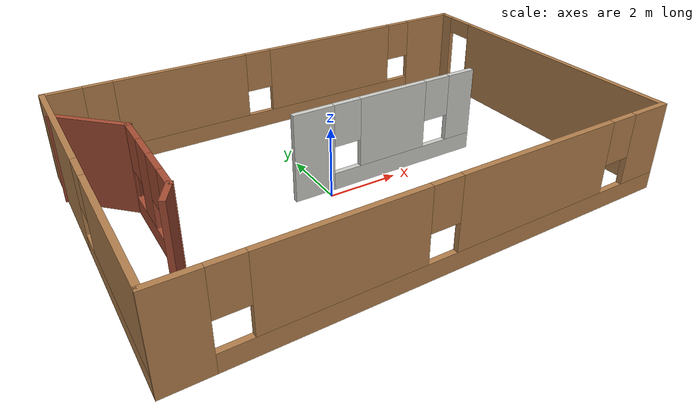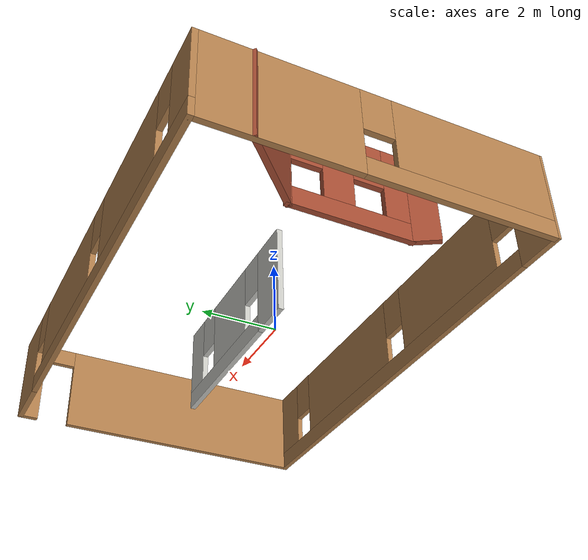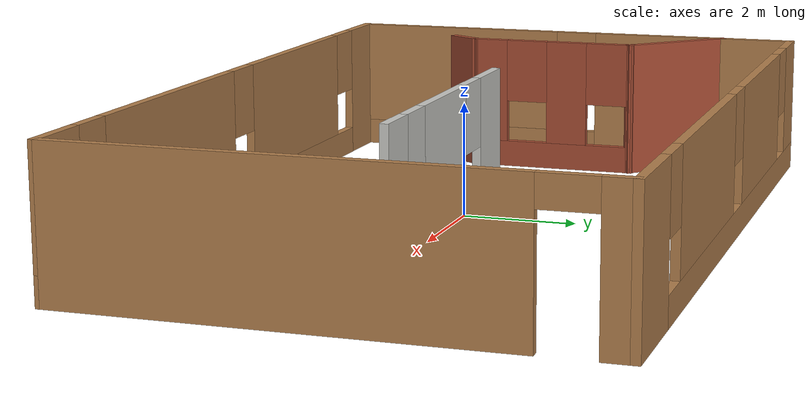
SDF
<?xml version='1.0'?>
<sdf version='1.7'>
  <model name='hotel'>
    <pose>0.707218 0.357285 0 0 -0 0</pose>
    <link name='Wall_0'>
      <pose>0.029803 -4.39357 0 0 -0 0</pose>
      <visual name='Wall_0_Visual_0'>
        <pose>-6.15985 0 1.25 0 -0 0</pose>
        <geometry>
          <box>
            <size>1.1803 0.15 2.5</size>
          </box>
        </geometry>
        <material>
          <script>
            <uri>file://media/materials/scripts/gazebo.material</uri>
            <name>Gazebo/Wood</name>
          </script>
          <ambient>1 1 1 1</ambient>
        </material>
        <meta>
          <layer>0</layer>
        </meta>
      </visual>
      <collision name='Wall_0_Collision_0'>
        <geometry>
          <box>
            <size>1.1803 0.15 2.5</size>
          </box>
        </geometry>
        <pose>-6.15985 0 1.25 0 -0 0</pose>
      </collision>
      <visual name='Wall_0_Visual_1'>
        <pose>0.590153 0 0.25 0 -0 0</pose>
        <geometry>
          <box>
            <size>12.3197 0.15 0.5</size>
          </box>
        </geometry>
        <material>
          <script>
            <uri>file://media/materials/scripts/gazebo.material</uri>
            <name>Gazebo/Wood</name>
          </script>
          <ambient>1 1 1 1</ambient>
        </material>
        <meta>
          <layer>0</layer>
        </meta>
      </visual>
      <collision name='Wall_0_Collision_1'>
        <geometry>
          <box>
            <size>12.3197 0.15 0.5</size>
          </box>
        </geometry>
        <pose>0.590153 0 0.25 0 -0 0</pose>
      </collision>
      <visual name='Wall_0_Visual_2'>
        <pose>-2.73777 0 1.5 0 -0 0</pose>
        <geometry>
          <box>
            <size>4.06385 0.15 2</size>
          </box>
        </geometry>
        <material>
          <script>
            <uri>file://media/materials/scripts/gazebo.material</uri>
            <name>Gazebo/Wood</name>
          </script>
          <ambient>1 1 1 1</ambient>
        </material>
        <meta>
          <layer>0</layer>
        </meta>
      </visual>
      <collision name='Wall_0_Collision_2'>
        <geometry>
          <box>
            <size>4.06385 0.15 2</size>
          </box>
        </geometry>
        <pose>-2.73777 0 1.5 0 -0 0</pose>
      </collision>
      <visual name='Wall_0_Visual_3'>
        <pose>2.41668 0 1.5 0 -0 0</pose>
        <geometry>
          <box>
            <size>4.64506 0.15 2</size>
          </box>
        </geometry>
        <material>
          <script>
            <uri>file://media/materials/scripts/gazebo.material</uri>
            <name>Gazebo/Wood</name>
          </script>
          <ambient>1 1 1 1</ambient>
        </material>
        <meta>
          <layer>0</layer>
        </meta>
      </visual>
      <collision name='Wall_0_Collision_3'>
        <geometry>
          <box>
            <size>4.64506 0.15 2</size>
          </box>
        </geometry>
        <pose>2.41668 0 1.5 0 -0 0</pose>
      </collision>
      <visual name='Wall_0_Visual_4'>
        <pose>6.14461 0 1.5 0 -0 0</pose>
        <geometry>
          <box>
            <size>1.21079 0.15 2</size>
          </box>
        </geometry>
        <material>
          <script>
            <uri>file://media/materials/scripts/gazebo.material</uri>
            <name>Gazebo/Wood</name>
          </script>
          <ambient>1 1 1 1</ambient>
        </material>
        <meta>
          <layer>0</layer>
        </meta>
      </visual>
      <collision name='Wall_0_Collision_4'>
        <geometry>
          <box>
            <size>1.21079 0.15 2</size>
          </box>
        </geometry>
        <pose>6.14461 0 1.5 0 -0 0</pose>
      </collision>
      <visual name='Wall_0_Visual_5'>
        <pose>-5.16969 0 1.9 0 -0 0</pose>
        <geometry>
          <box>
            <size>0.8 0.15 1.2</size>
          </box>
        </geometry>
        <material>
          <script>
            <uri>file://media/materials/scripts/gazebo.material</uri>
            <name>Gazebo/Wood</name>
          </script>
          <ambient>1 1 1 1</ambient>
        </material>
        <meta>
          <layer>0</layer>
        </meta>
      </visual>
      <collision name='Wall_0_Collision_5'>
        <geometry>
          <box>
            <size>0.8 0.15 1.2</size>
          </box>
        </geometry>
        <pose>-5.16969 0 1.9 0 -0 0</pose>
      </collision>
      <visual name='Wall_0_Visual_6'>
        <pose>-0.305849 0 1.9 0 -0 0</pose>
        <geometry>
          <box>
            <size>0.8 0.15 1.2</size>
          </box>
        </geometry>
        <material>
          <script>
            <uri>file://media/materials/scripts/gazebo.material</uri>
            <name>Gazebo/Wood</name>
          </script>
          <ambient>1 1 1 1</ambient>
        </material>
        <meta>
          <layer>0</layer>
        </meta>
      </visual>
      <collision name='Wall_0_Collision_6'>
        <geometry>
          <box>
            <size>0.8 0.15 1.2</size>
          </box>
        </geometry>
        <pose>-0.305849 0 1.9 0 -0 0</pose>
      </collision>
      <visual name='Wall_0_Visual_7'>
        <pose>5.13921 0 1.9 0 -0 0</pose>
        <geometry>
          <box>
            <size>0.8 0.15 1.2</size>
          </box>
        </geometry>
        <material>
          <script>
            <uri>file://media/materials/scripts/gazebo.material</uri>
            <name>Gazebo/Wood</name>
          </script>
          <ambient>1 1 1 1</ambient>
        </material>
        <meta>
          <layer>0</layer>
        </meta>
      </visual>
      <collision name='Wall_0_Collision_7'>
        <geometry>
          <box>
            <size>0.8 0.15 1.2</size>
          </box>
        </geometry>
        <pose>5.13921 0 1.9 0 -0 0</pose>
      </collision>
    </link>
    <link name='Wall_1'>
      <pose>6.7048 0.017589 0 0 -0 1.5708</pose>
      <visual name='Wall_1_Visual_0'>
        <pose>-0.714666 0 1.25 0 -0 0</pose>
        <geometry>
          <box>
            <size>7.40227 0.15 2.5</size>
          </box>
        </geometry>
        <material>
          <script>
            <uri>file://media/materials/scripts/gazebo.material</uri>
            <name>Gazebo/Wood</name>
          </script>
          <ambient>1 1 1 1</ambient>
        </material>
        <meta>
          <layer>0</layer>
        </meta>
      </visual>
      <collision name='Wall_1_Collision_0'>
        <geometry>
          <box>
            <size>7.40227 0.15 2.5</size>
          </box>
        </geometry>
        <pose>-0.714666 0 1.25 0 -0 0</pose>
      </collision>
      <visual name='Wall_1_Visual_1'>
        <pose>4.15114 0 1.25 0 -0 0</pose>
        <geometry>
          <box>
            <size>0.529331 0.15 2.5</size>
          </box>
        </geometry>
        <material>
          <script>
            <uri>file://media/materials/scripts/gazebo.material</uri>
            <name>Gazebo/Wood</name>
          </script>
          <ambient>1 1 1 1</ambient>
        </material>
        <meta>
          <layer>0</layer>
        </meta>
      </visual>
      <collision name='Wall_1_Collision_1'>
        <geometry>
          <box>
            <size>0.529331 0.15 2.5</size>
          </box>
        </geometry>
        <pose>4.15114 0 1.25 0 -0 0</pose>
      </collision>
      <visual name='Wall_1_Visual_2'>
        <pose>3.43647 0 2.25 0 -0 0</pose>
        <geometry>
          <box>
            <size>0.9 0.15 0.5</size>
          </box>
        </geometry>
        <material>
          <script>
            <uri>file://media/materials/scripts/gazebo.material</uri>
            <name>Gazebo/Wood</name>
          </script>
          <ambient>1 1 1 1</ambient>
        </material>
        <meta>
          <layer>0</layer>
        </meta>
      </visual>
      <collision name='Wall_1_Collision_2'>
        <geometry>
          <box>
            <size>0.9 0.15 0.5</size>
          </box>
        </geometry>
        <pose>3.43647 0 2.25 0 -0 0</pose>
      </collision>
    </link>
    <link name='Wall_2'>
      <pose>0.029803 4.39357 0 0 -0 3.14159</pose>
      <visual name='Wall_2_Visual_0'>
        <pose>-5.89988 0 1.25 0 -0 0</pose>
        <geometry>
          <box>
            <size>1.70023 0.15 2.5</size>
          </box>
        </geometry>
        <material>
          <script>
            <uri>file://media/materials/scripts/gazebo.material</uri>
            <name>Gazebo/Wood</name>
          </script>
          <ambient>1 1 1 1</ambient>
        </material>
        <meta>
          <layer>0</layer>
        </meta>
      </visual>
      <collision name='Wall_2_Collision_0'>
        <geometry>
          <box>
            <size>1.70023 0.15 2.5</size>
          </box>
        </geometry>
        <pose>-5.89988 0 1.25 0 -0 0</pose>
      </collision>
      <visual name='Wall_2_Visual_1'>
        <pose>0.850116 0 0.25 0 -0 0</pose>
        <geometry>
          <box>
            <size>11.7998 0.15 0.5</size>
          </box>
        </geometry>
        <material>
          <script>
            <uri>file://media/materials/scripts/gazebo.material</uri>
            <name>Gazebo/Wood</name>
          </script>
          <ambient>1 1 1 1</ambient>
        </material>
        <meta>
          <layer>0</layer>
        </meta>
      </visual>
      <collision name='Wall_2_Collision_1'>
        <geometry>
          <box>
            <size>11.7998 0.15 0.5</size>
          </box>
        </geometry>
        <pose>0.850116 0 0.25 0 -0 0</pose>
      </collision>
      <visual name='Wall_2_Visual_2'>
        <pose>-2.0496 0 1.5 0 -0 0</pose>
        <geometry>
          <box>
            <size>4.40034 0.15 2</size>
          </box>
        </geometry>
        <material>
          <script>
            <uri>file://media/materials/scripts/gazebo.material</uri>
            <name>Gazebo/Wood</name>
          </script>
          <ambient>1 1 1 1</ambient>
        </material>
        <meta>
          <layer>0</layer>
        </meta>
      </visual>
      <collision name='Wall_2_Collision_2'>
        <geometry>
          <box>
            <size>4.40034 0.15 2</size>
          </box>
        </geometry>
        <pose>-2.0496 0 1.5 0 -0 0</pose>
      </collision>
      <visual name='Wall_2_Visual_3'>
        <pose>2.90602 0 1.5 0 -0 0</pose>
        <geometry>
          <box>
            <size>3.9109 0.15 2</size>
          </box>
        </geometry>
        <material>
          <script>
            <uri>file://media/materials/scripts/gazebo.material</uri>
            <name>Gazebo/Wood</name>
          </script>
          <ambient>1 1 1 1</ambient>
        </material>
        <meta>
          <layer>0</layer>
        </meta>
      </visual>
      <collision name='Wall_2_Collision_3'>
        <geometry>
          <box>
            <size>3.9109 0.15 2</size>
          </box>
        </geometry>
        <pose>2.90602 0 1.5 0 -0 0</pose>
      </collision>
      <visual name='Wall_2_Visual_4'>
        <pose>6.20573 0 1.5 0 -0 0</pose>
        <geometry>
          <box>
            <size>1.08853 0.15 2</size>
          </box>
        </geometry>
        <material>
          <script>
            <uri>file://media/materials/scripts/gazebo.material</uri>
            <name>Gazebo/Wood</name>
          </script>
          <ambient>1 1 1 1</ambient>
        </material>
        <meta>
          <layer>0</layer>
        </meta>
      </visual>
      <collision name='Wall_2_Collision_4'>
        <geometry>
          <box>
            <size>1.08853 0.15 2</size>
          </box>
        </geometry>
        <pose>6.20573 0 1.5 0 -0 0</pose>
      </collision>
      <visual name='Wall_2_Visual_5'>
        <pose>-4.64977 0 1.9 0 -0 0</pose>
        <geometry>
          <box>
            <size>0.8 0.15 1.2</size>
          </box>
        </geometry>
        <material>
          <script>
            <uri>file://media/materials/scripts/gazebo.material</uri>
            <name>Gazebo/Wood</name>
          </script>
          <ambient>1 1 1 1</ambient>
        </material>
        <meta>
          <layer>0</layer>
        </meta>
      </visual>
      <collision name='Wall_2_Collision_5'>
        <geometry>
          <box>
            <size>0.8 0.15 1.2</size>
          </box>
        </geometry>
        <pose>-4.64977 0 1.9 0 -0 0</pose>
      </collision>
      <visual name='Wall_2_Visual_6'>
        <pose>0.55057 0 1.9 0 -0 0</pose>
        <geometry>
          <box>
            <size>0.8 0.15 1.2</size>
          </box>
        </geometry>
        <material>
          <script>
            <uri>file://media/materials/scripts/gazebo.material</uri>
            <name>Gazebo/Wood</name>
          </script>
          <ambient>1 1 1 1</ambient>
        </material>
        <meta>
          <layer>0</layer>
        </meta>
      </visual>
      <collision name='Wall_2_Collision_6'>
        <geometry>
          <box>
            <size>0.8 0.15 1.2</size>
          </box>
        </geometry>
        <pose>0.55057 0 1.9 0 -0 0</pose>
      </collision>
      <visual name='Wall_2_Visual_7'>
        <pose>5.26147 0 1.9 0 -0 0</pose>
        <geometry>
          <box>
            <size>0.8 0.15 1.2</size>
          </box>
        </geometry>
        <material>
          <script>
            <uri>file://media/materials/scripts/gazebo.material</uri>
            <name>Gazebo/Wood</name>
          </script>
          <ambient>1 1 1 1</ambient>
        </material>
        <meta>
          <layer>0</layer>
        </meta>
      </visual>
      <collision name='Wall_2_Collision_7'>
        <geometry>
          <box>
            <size>0.8 0.15 1.2</size>
          </box>
        </geometry>
        <pose>5.26147 0 1.9 0 -0 0</pose>
      </collision>
    </link>
    <link name='Wall_3'>
      <pose>-6.6452 0.017589 0 0 -0 -1.5708</pose>
      <visual name='Wall_3_Visual_0'>
        <pose>-2.45897 0 1.25 0 -0 0</pose>
        <geometry>
          <box>
            <size>3.91367 0.15 2.5</size>
          </box>
        </geometry>
        <material>
          <script>
            <uri>file://media/materials/scripts/gazebo.material</uri>
            <name>Gazebo/Wood</name>
          </script>
          <ambient>1 1 1 1</ambient>
        </material>
        <meta>
          <layer>0</layer>
        </meta>
      </visual>
      <collision name='Wall_3_Collision_0'>
        <geometry>
          <box>
            <size>3.91367 0.15 2.5</size>
          </box>
        </geometry>
        <pose>-2.45897 0 1.25 0 -0 0</pose>
      </collision>
      <visual name='Wall_3_Visual_1'>
        <pose>1.95683 0 0.25 0 -0 0</pose>
        <geometry>
          <box>
            <size>4.91794 0.15 0.5</size>
          </box>
        </geometry>
        <material>
          <script>
            <uri>file://media/materials/scripts/gazebo.material</uri>
            <name>Gazebo/Wood</name>
          </script>
          <ambient>1 1 1 1</ambient>
        </material>
        <meta>
          <layer>0</layer>
        </meta>
      </visual>
      <collision name='Wall_3_Collision_1'>
        <geometry>
          <box>
            <size>4.91794 0.15 0.5</size>
          </box>
        </geometry>
        <pose>1.95683 0 0.25 0 -0 0</pose>
      </collision>
      <visual name='Wall_3_Visual_2'>
        <pose>2.35683 0 1.5 0 -0 0</pose>
        <geometry>
          <box>
            <size>4.11794 0.15 2</size>
          </box>
        </geometry>
        <material>
          <script>
            <uri>file://media/materials/scripts/gazebo.material</uri>
            <name>Gazebo/Wood</name>
          </script>
          <ambient>1 1 1 1</ambient>
        </material>
        <meta>
          <layer>0</layer>
        </meta>
      </visual>
      <collision name='Wall_3_Collision_2'>
        <geometry>
          <box>
            <size>4.11794 0.15 2</size>
          </box>
        </geometry>
        <pose>2.35683 0 1.5 0 -0 0</pose>
      </collision>
      <visual name='Wall_3_Visual_3'>
        <pose>-0.102136 0 1.9 0 -0 0</pose>
        <geometry>
          <box>
            <size>0.8 0.15 1.2</size>
          </box>
        </geometry>
        <material>
          <script>
            <uri>file://media/materials/scripts/gazebo.material</uri>
            <name>Gazebo/Wood</name>
          </script>
          <ambient>1 1 1 1</ambient>
        </material>
        <meta>
          <layer>0</layer>
        </meta>
      </visual>
      <collision name='Wall_3_Collision_3'>
        <geometry>
          <box>
            <size>0.8 0.15 1.2</size>
          </box>
        </geometry>
        <pose>-0.102136 0 1.9 0 -0 0</pose>
      </collision>
    </link>
    <link name='Wall_5'>
      <collision name='Wall_5_Collision'>
        <geometry>
          <box>
            <size>2.25 0.15 2.5</size>
          </box>
        </geometry>
        <pose>0 0 1.25 0 -0 0</pose>
      </collision>
      <visual name='Wall_5_Visual'>
        <pose>0 0 1.25 0 -0 0</pose>
        <geometry>
          <box>
            <size>2.25 0.15 2.5</size>
          </box>
        </geometry>
        <material>
          <script>
            <uri>file://media/materials/scripts/gazebo.material</uri>
            <name>Gazebo/Bricks</name>
          </script>
          <ambient>1 1 1 1</ambient>
        </material>
        <meta>
          <layer>0</layer>
        </meta>
      </visual>
      <pose>-5.93128 2.29806 0 0 -0 -0.785398</pose>
    </link>
    <link name='Wall_6'>
      <pose>-5.18881 0.005596 0 0 -0 -1.5708</pose>
      <visual name='Wall_6_Visual_0'>
        <pose>-1.55901 0 1.25 0 -0 0</pose>
        <geometry>
          <box>
            <size>0.131984 0.15 2.5</size>
          </box>
        </geometry>
        <material>
          <script>
            <uri>file://media/materials/scripts/gazebo.material</uri>
            <name>Gazebo/Bricks</name>
          </script>
          <ambient>1 1 1 1</ambient>
        </material>
        <meta>
          <layer>0</layer>
        </meta>
      </visual>
      <collision name='Wall_6_Collision_0'>
        <geometry>
          <box>
            <size>0.131984 0.15 2.5</size>
          </box>
        </geometry>
        <pose>-1.55901 0 1.25 0 -0 0</pose>
      </collision>
      <visual name='Wall_6_Visual_1'>
        <pose>0.065992 0 0.25 0 -0 0</pose>
        <geometry>
          <box>
            <size>3.11802 0.15 0.5</size>
          </box>
        </geometry>
        <material>
          <script>
            <uri>file://media/materials/scripts/gazebo.material</uri>
            <name>Gazebo/Bricks</name>
          </script>
          <ambient>1 1 1 1</ambient>
        </material>
        <meta>
          <layer>0</layer>
        </meta>
      </visual>
      <collision name='Wall_6_Collision_1'>
        <geometry>
          <box>
            <size>3.11802 0.15 0.5</size>
          </box>
        </geometry>
        <pose>0.065992 0 0.25 0 -0 0</pose>
      </collision>
      <visual name='Wall_6_Visual_2'>
        <pose>-0.29767 0 1.5 0 -0 0</pose>
        <geometry>
          <box>
            <size>0.790692 0.15 2</size>
          </box>
        </geometry>
        <material>
          <script>
            <uri>file://media/materials/scripts/gazebo.material</uri>
            <name>Gazebo/Bricks</name>
          </script>
          <ambient>1 1 1 1</ambient>
        </material>
        <meta>
          <layer>0</layer>
        </meta>
      </visual>
      <collision name='Wall_6_Collision_2'>
        <geometry>
          <box>
            <size>0.790692 0.15 2</size>
          </box>
        </geometry>
        <pose>-0.29767 0 1.5 0 -0 0</pose>
      </collision>
      <visual name='Wall_6_Visual_3'>
        <pose>1.26134 0 1.5 0 -0 0</pose>
        <geometry>
          <box>
            <size>0.727324 0.15 2</size>
          </box>
        </geometry>
        <material>
          <script>
            <uri>file://media/materials/scripts/gazebo.material</uri>
            <name>Gazebo/Bricks</name>
          </script>
          <ambient>1 1 1 1</ambient>
        </material>
        <meta>
          <layer>0</layer>
        </meta>
      </visual>
      <collision name='Wall_6_Collision_3'>
        <geometry>
          <box>
            <size>0.727324 0.15 2</size>
          </box>
        </geometry>
        <pose>1.26134 0 1.5 0 -0 0</pose>
      </collision>
      <visual name='Wall_6_Visual_4'>
        <pose>-1.09302 0 1.9 0 -0 0</pose>
        <geometry>
          <box>
            <size>0.8 0.15 1.2</size>
          </box>
        </geometry>
        <material>
          <script>
            <uri>file://media/materials/scripts/gazebo.material</uri>
            <name>Gazebo/Bricks</name>
          </script>
          <ambient>1 1 1 1</ambient>
        </material>
        <meta>
          <layer>0</layer>
        </meta>
      </visual>
      <collision name='Wall_6_Collision_4'>
        <geometry>
          <box>
            <size>0.8 0.15 1.2</size>
          </box>
        </geometry>
        <pose>-1.09302 0 1.9 0 -0 0</pose>
      </collision>
      <visual name='Wall_6_Visual_5'>
        <pose>0.497676 0 1.9 0 -0 0</pose>
        <geometry>
          <box>
            <size>0.8 0.15 1.2</size>
          </box>
        </geometry>
        <material>
          <script>
            <uri>file://media/materials/scripts/gazebo.material</uri>
            <name>Gazebo/Bricks</name>
          </script>
          <ambient>1 1 1 1</ambient>
        </material>
        <meta>
          <layer>0</layer>
        </meta>
      </visual>
      <collision name='Wall_6_Collision_5'>
        <geometry>
          <box>
            <size>0.8 0.15 1.2</size>
          </box>
        </geometry>
        <pose>0.497676 0 1.9 0 -0 0</pose>
      </collision>
    </link>
    <link name='Wall_7'>
      <collision name='Wall_7_Collision'>
        <geometry>
          <box>
            <size>0.75 0.15 2.5</size>
          </box>
        </geometry>
        <pose>0 0 1.25 0 -0 0</pose>
      </collision>
      <visual name='Wall_7_Visual'>
        <pose>0 0 1.25 0 -0 0</pose>
        <geometry>
          <box>
            <size>0.75 0.15 2.5</size>
          </box>
        </geometry>
        <material>
          <script>
            <uri>file://media/materials/scripts/gazebo.material</uri>
            <name>Gazebo/Bricks</name>
          </script>
          <ambient>1 1 1 1</ambient>
        </material>
        <meta>
          <layer>0</layer>
        </meta>
      </visual>
      <pose>-5.33881 -1.80421 0 0 -0 -2.0944</pose>
    </link>
    <link name='Wall_9'>
      <pose>1.23917 -0.063817 0 0 -0 0</pose>
      <visual name='Wall_9_Visual_0'>
        <pose>-2.28804 0 1.25 0 -0 0</pose>
        <geometry>
          <box>
            <size>1.17392 0.15 2.5</size>
          </box>
        </geometry>
        <material>
          <script>
            <uri>file://media/materials/scripts/gazebo.material</uri>
            <name>Gazebo/CeilingTiled</name>
          </script>
          <ambient>1 1 1 1</ambient>
        </material>
        <meta>
          <layer>0</layer>
        </meta>
      </visual>
      <collision name='Wall_9_Collision_0'>
        <geometry>
          <box>
            <size>1.17392 0.15 2.5</size>
          </box>
        </geometry>
        <pose>-2.28804 0 1.25 0 -0 0</pose>
      </collision>
      <visual name='Wall_9_Visual_1'>
        <pose>0.586961 0 0.25 0 -0 0</pose>
        <geometry>
          <box>
            <size>4.57608 0.15 0.5</size>
          </box>
        </geometry>
        <material>
          <script>
            <uri>file://media/materials/scripts/gazebo.material</uri>
            <name>Gazebo/CeilingTiled</name>
          </script>
          <ambient>1 1 1 1</ambient>
        </material>
        <meta>
          <layer>0</layer>
        </meta>
      </visual>
      <collision name='Wall_9_Collision_1'>
        <geometry>
          <box>
            <size>4.57608 0.15 0.5</size>
          </box>
        </geometry>
        <pose>0.586961 0 0.25 0 -0 0</pose>
      </collision>
      <visual name='Wall_9_Visual_2'>
        <pose>0.151957 0 1.5 0 -0 0</pose>
        <geometry>
          <box>
            <size>2.10607 0.15 2</size>
          </box>
        </geometry>
        <material>
          <script>
            <uri>file://media/materials/scripts/gazebo.material</uri>
            <name>Gazebo/CeilingTiled</name>
          </script>
          <ambient>1 1 1 1</ambient>
        </material>
        <meta>
          <layer>0</layer>
        </meta>
      </visual>
      <collision name='Wall_9_Collision_2'>
        <geometry>
          <box>
            <size>2.10607 0.15 2</size>
          </box>
        </geometry>
        <pose>0.151957 0 1.5 0 -0 0</pose>
      </collision>
      <visual name='Wall_9_Visual_3'>
        <pose>2.44 0 1.5 0 -0 0</pose>
        <geometry>
          <box>
            <size>0.870007 0.15 2</size>
          </box>
        </geometry>
        <material>
          <script>
            <uri>file://media/materials/scripts/gazebo.material</uri>
            <name>Gazebo/CeilingTiled</name>
          </script>
          <ambient>1 1 1 1</ambient>
        </material>
        <meta>
          <layer>0</layer>
        </meta>
      </visual>
      <collision name='Wall_9_Collision_3'>
        <geometry>
          <box>
            <size>0.870007 0.15 2</size>
          </box>
        </geometry>
        <pose>2.44 0 1.5 0 -0 0</pose>
      </collision>
      <visual name='Wall_9_Visual_4'>
        <pose>-1.30108 0 1.9 0 -0 0</pose>
        <geometry>
          <box>
            <size>0.8 0.15 1.2</size>
          </box>
        </geometry>
        <material>
          <script>
            <uri>file://media/materials/scripts/gazebo.material</uri>
            <name>Gazebo/CeilingTiled</name>
          </script>
          <ambient>1 1 1 1</ambient>
        </material>
        <meta>
          <layer>0</layer>
        </meta>
      </visual>
      <collision name='Wall_9_Collision_4'>
        <geometry>
          <box>
            <size>0.8 0.15 1.2</size>
          </box>
        </geometry>
        <pose>-1.30108 0 1.9 0 -0 0</pose>
      </collision>
      <visual name='Wall_9_Visual_5'>
        <pose>1.60499 0 1.9 0 -0 0</pose>
        <geometry>
          <box>
            <size>0.8 0.15 1.2</size>
          </box>
        </geometry>
        <material>
          <script>
            <uri>file://media/materials/scripts/gazebo.material</uri>
            <name>Gazebo/CeilingTiled</name>
          </script>
          <ambient>1 1 1 1</ambient>
        </material>
        <meta>
          <layer>0</layer>
        </meta>
      </visual>
      <collision name='Wall_9_Collision_5'>
        <geometry>
          <box>
            <size>0.8 0.15 1.2</size>
          </box>
        </geometry>
        <pose>1.60499 0 1.9 0 -0 0</pose>
      </collision>
    </link>
    <static>1</static>

  </model>
</sdf>
